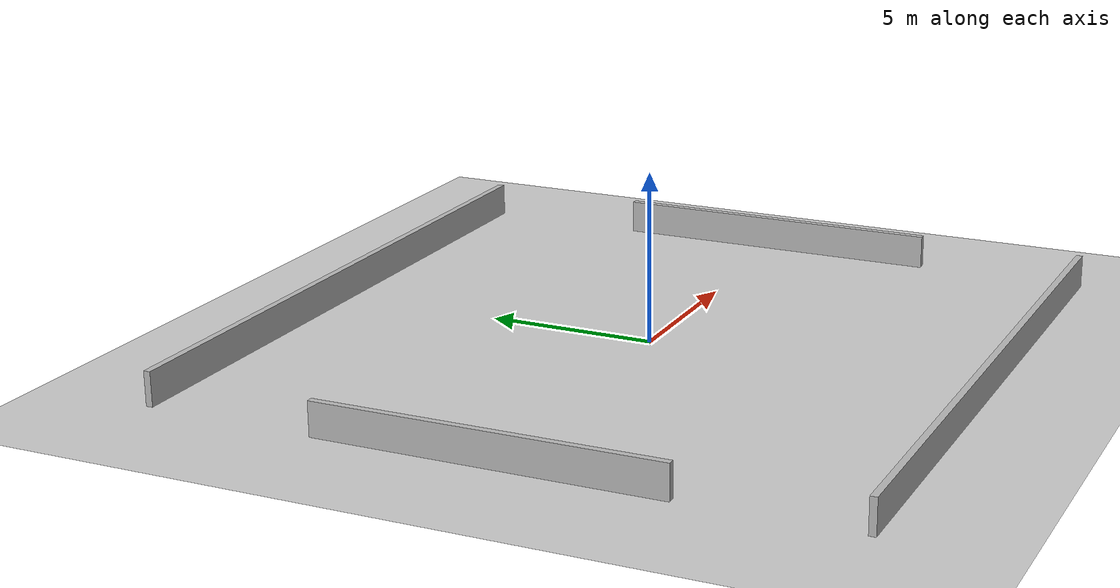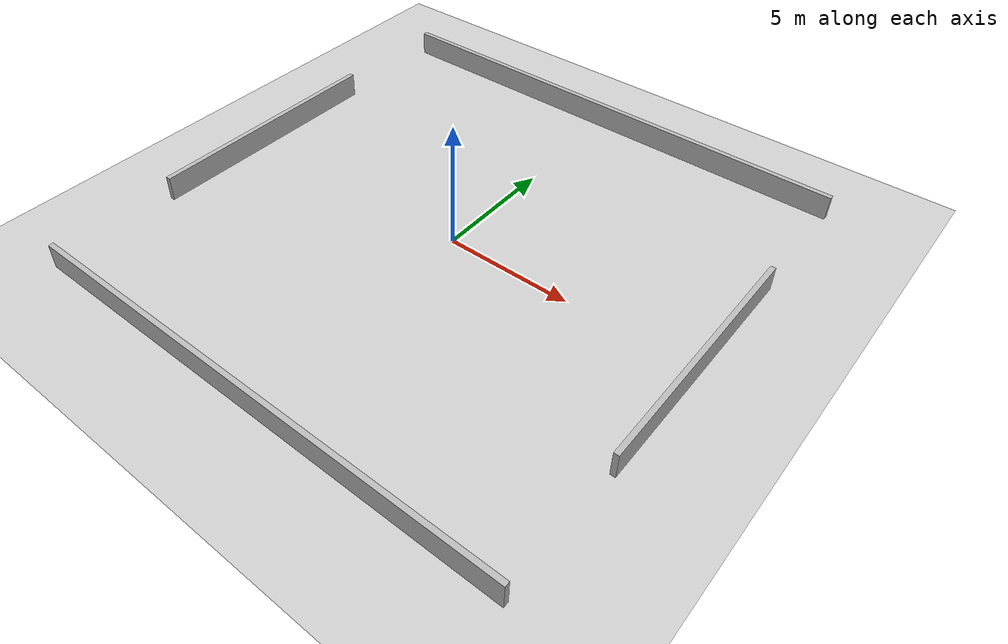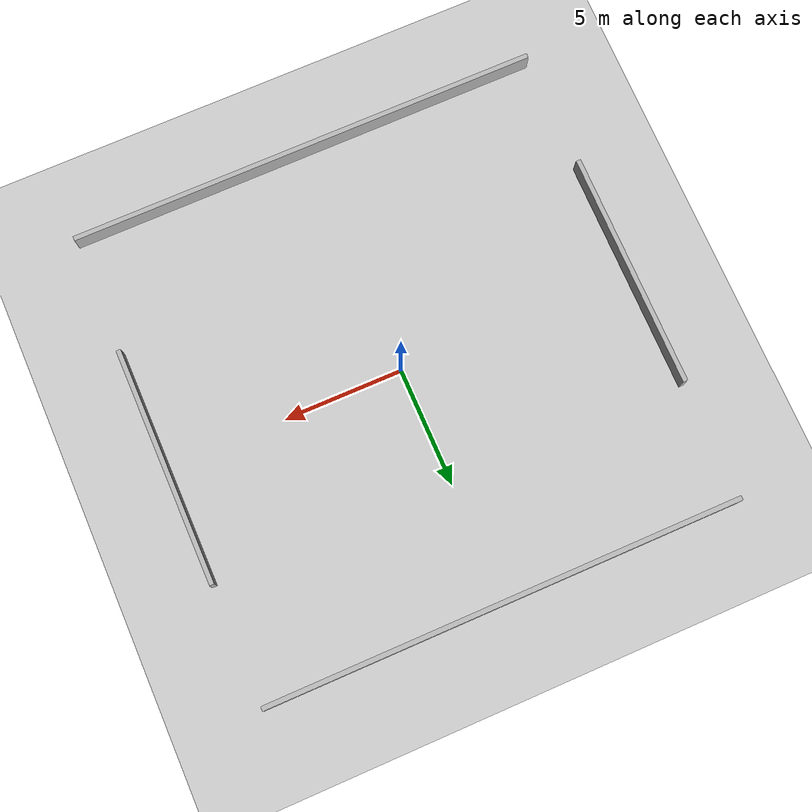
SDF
<?xml version="1.0"?>
<sdf version="1.6">
  <world name="thin_walls_square">
    <!-- Ground plane -->
    <include>
      <uri>model://ground_plane</uri>
    </include>

    <!-- Sun -->
    <include>
      <uri>model://sun</uri>
    </include>

    <!-- Thin walls forming a square -->
    <model name="wall_1">
      <static>true</static>
      <pose>0 10 0.5 0 0 0</pose>
      <link name="link">
        <visual name="visual">
          <geometry>
            <box>
              <size>20 0.2 1</size>
            </box>
          </geometry>
        </visual>
        <collision name="collision">
          <geometry>
            <box>
              <size>20 0.2 1</size>
            </box>
          </geometry>
        </collision>
      </link>
    </model>

    <model name="wall_2">
      <static>true</static>
      <pose>0 -10 0.5 0 0 0</pose>
      <link name="link">
        <visual name="visual">
          <geometry>
            <box>
              <size>20 0.2 1</size>
            </box>
          </geometry>
        </visual>
        <collision name="collision">
          <geometry>
            <box>
              <size>20 0.2 1</size>
            </box>
          </geometry>
        </collision>
      </link>
    </model>

    <model name="wall_3">
      <static>true</static>
      <pose>10 0 0.5 0 0 1.5708</pose>
      <link name="link">
        <visual name="visual">
          <geometry>
            <box>
              <size>10 0.2 1</size>
            </box>
          </geometry>
        </visual>
        <collision name="collision">
          <geometry>
            <box>
              <size>10 0.2 1</size>
            </box>
          </geometry>
        </collision>
      </link>
    </model>

    <model name="wall_4">
      <static>true</static>
      <pose>-10 0 0.5 0 0 1.5708</pose>
      <link name="link">
        <visual name="visual">
          <geometry>
            <box>
              <size>10 0.2 1</size>
            </box>
          </geometry>
        </visual>
        <collision name="collision">
          <geometry>
            <box>
              <size>10 0.2 1</size>
            </box>
          </geometry>
        </collision>
      </link>
    </model>
  </world>
</sdf>
